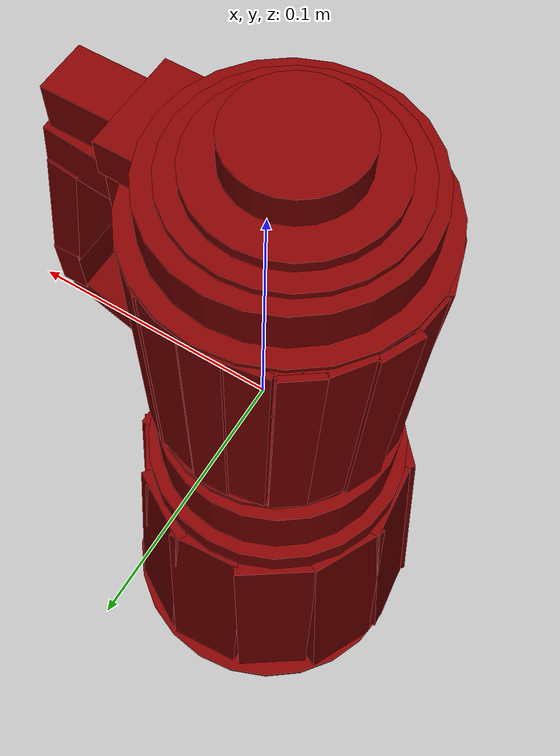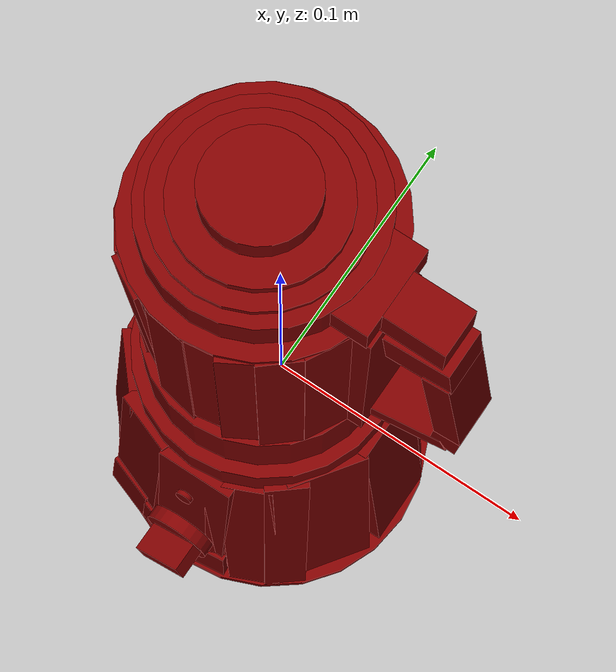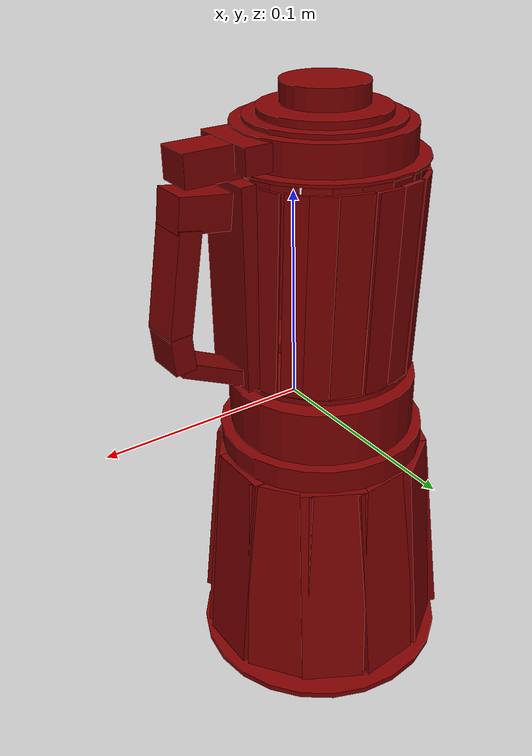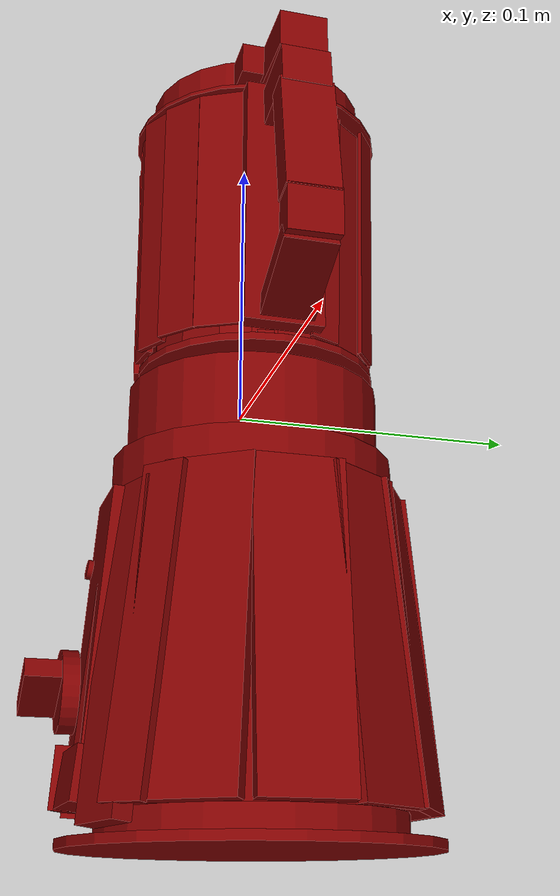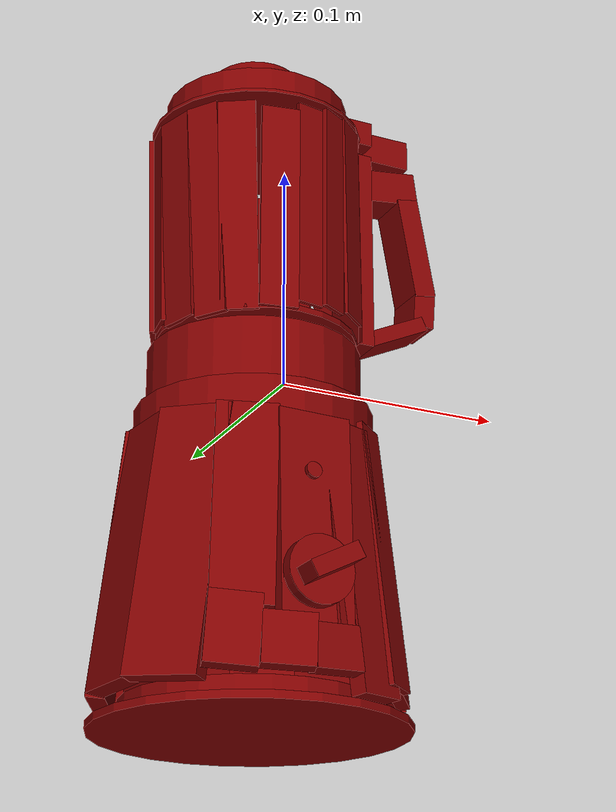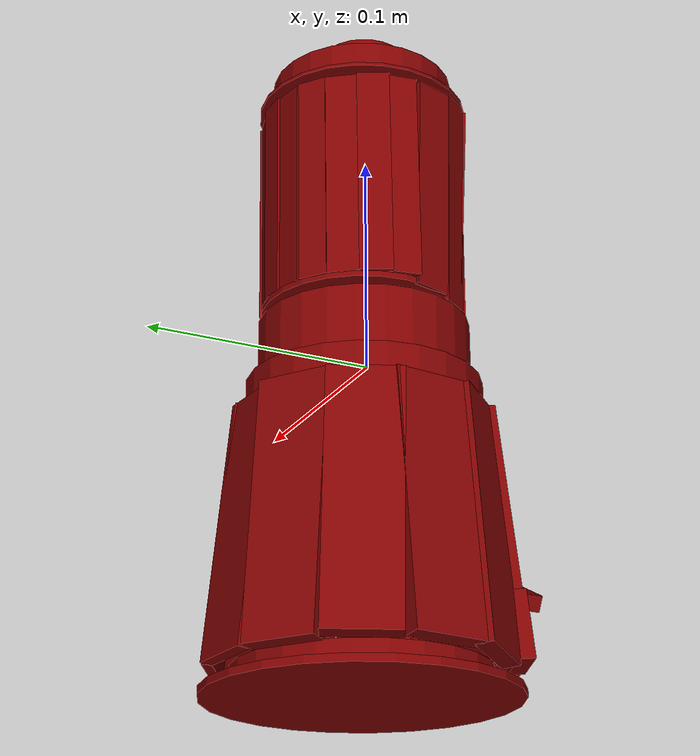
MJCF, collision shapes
<?xml version='1.0' encoding='UTF-8'?>
<mujoco model="model">
  <option timestep="0.002" gravity="0.0 0.0 -9.81"/>
  <compiler angle="radian"/>
  <asset>
    <mesh file="visuals/Blade001.obj" name="Blade001_vis"/>
    <mesh file="visuals/Body001.obj" name="Body001_vis"/>
    <mesh file="visuals/Button001.obj" name="Button001_vis"/>
    <mesh file="visuals/Jug001.obj" name="Jug001_vis"/>
    <mesh file="visuals/Jug001_Clear.obj" name="Jug001_Clear_vis"/>
    <mesh file="visuals/Knob001.obj" name="Knob001_vis"/>
    <mesh file="visuals/Lid001.obj" name="Lid001_vis"/>
    <texture file="visuals/T_BC001.png" name="Body001_material" type="2d"/>
    <material name="Body001_material" rgba="1 1 1 1.0" texture="Body001_material" shininess="0.7126775979995728" specular="0.3103448502657381"/>
    <texture file="visuals/T_BC001.png" name="Button001_material" type="2d"/>
    <material name="Button001_material" rgba="1 1 1 1.0" texture="Button001_material" shininess="0.7126775979995728" specular="0.3103448502657381"/>
    <texture file="visuals/T_BC001.png" name="Jug001_material" type="2d"/>
    <material name="Jug001_material" rgba="1 1 1 1.0" texture="Jug001_material" shininess="0.7126775979995728" specular="0.3103448502657381"/>
    <texture file="visuals/T_BC001.png" name="Blade001_material" type="2d"/>
    <material name="Blade001_material" rgba="1 1 1 1.0" texture="Blade001_material" shininess="0.7126775979995728" specular="0.3103448502657381"/>
    <texture file="visuals/T_BC001.png" name="Jug001_Clear_material" type="2d"/>
    <material name="Jug001_Clear_material" rgba="1 1 1 0.800000011920929" texture="Jug001_Clear_material" shininess="0.8092784583568573" specular="0.3103448502657381"/>
    <texture file="visuals/T_BC001.png" name="Lid001_material" type="2d"/>
    <material name="Lid001_material" rgba="1 1 1 1.0" texture="Lid001_material" shininess="0.7126775979995728" specular="0.3103448502657381"/>
    <texture file="visuals/T_BC001.png" name="Knob001_material" type="2d"/>
    <material name="Knob001_material" rgba="1 1 1 1.0" texture="Knob001_material" shininess="0.7126775979995728" specular="0.3103448502657381"/>
  </asset>
  <default>
    <default class="visual">
      <geom conaffinity="0" contype="0" group="1" type="mesh"/>
    </default>
    <default class="collision">
      <geom group="0" rgba="0.5 0 0 0.5"/>
    </default>
    <default class="spawn">
      <geom group="0" rgba="1 1 1 0.5" contype="0" conaffinity="0"/>
      <site group="0" rgba="1 1 1 0.5"/>
    </default>
    <default class="region">
      <geom group="1" conaffinity="0" contype="0" rgba="0 1 0 0"/>
    </default>
  </default>
  <worldbody>
    <body>
      <body name="object">
        <geom mesh="Body001_vis" type="mesh" solimp="0.998 0.998 0.001" solref="0.001 1" friction="0.95 0.3 0.1" class="visual" material="Body001_material"/>
        <geom class="collision" type="box" pos="-0.06414317 0.00293150 -0.08131555" size="0.003986308351159096 0.015745818614959717 0.054941773414611816" quat="0.9969801902770996 0.002991716144606471 0.05849111080169678 0.05099374055862427"/>
        <geom class="collision" type="box" pos="-0.05898194 0.03102392 -0.08121618" size="0.003986308351159096 0.015745816752314568 0.054941773414611816" quat="0.9726268649101257 0.021922767162322998 0.05430987477302551 -0.22487075626850128"/>
        <geom class="collision" type="box" pos="-0.03821645 0.05216332 -0.08130155" size="0.003986308351159096 0.01574581488966942 0.054941773414611816" quat="0.886173665523529 0.020056521520018578 0.0385282076895237 -0.4613128900527954"/>
        <geom class="collision" type="box" pos="-0.01100860 0.06139588 -0.08139399" size="0.002653482835739851 0.015745816752314568 0.054941773414611816" quat="0.7362769842147827 0.0351811945438385 0.038393545895814896 -0.6746735572814941"/>
        <geom class="collision" type="box" pos="0.01633125 0.05513551 -0.08116253" size="0.0021790468599647284 0.01574581488966942 0.054941777139902115" quat="0.49935898184776306 0.04383734613656998 0.025309504941105843 -0.8649151921272278"/>
        <geom class="collision" type="box" pos="0.03545922 0.03712036 -0.08134439" size="0.0018078562570735812 0.01574581488966942 0.054941773414611816" quat="0.30036523938179016 0.045378535985946655 0.014307779259979725 -0.9526367783546448"/>
        <geom class="collision" type="box" pos="0.04363298 0.01003369 -0.08086122" size="0.0026048512663692236 0.015745816752314568 0.054941773414611816" quat="7.540232616065623e-08 0.05030030384659767 3.797567593721851e-09 -0.9987341165542603"/>
        <geom class="collision" type="box" pos="0.03481350 -0.01944534 -0.08094111" size="0.0027222405187785625 0.015745816752314568 0.054941777139902115" quat="0.30034273862838745 -0.04684454947710037 0.01477002538740635 0.9525658488273621"/>
        <geom class="collision" type="box" pos="0.02587351 -0.03571680 -0.08130847" size="0.0014966638991609216 0.008354835212230682 0.05494178086519241" quat="0.4205015301704407 -0.04792412742972374 0.03366672620177269 0.9053995013237"/>
        <geom class="collision" type="box" pos="-0.05438795 -0.02428223 -0.08246415" size="0.003986308351159096 0.01574581488966942 0.054941773414611816" quat="0.9343163371086121 0.02062777802348137 0.05481475219130516 0.35160043835639954"/>
        <geom class="collision" type="box" pos="-0.03554909 -0.03983053 -0.07036536" size="0.003986308351159096 0.012453826144337654 0.04198986291885376" quat="0.8163965344429016 -0.016887996345758438 0.04775163158774376 0.5752662420272827"/>
        <geom class="collision" type="box" pos="0.00839477 -0.04297458 -0.08388708" size="0.002096703043207526 0.012412848882377148 0.04728870466351509" quat="0.560683012008667 -0.040940262377262115 0.030546532943844795 0.8264535069465637"/>
        <geom class="collision" type="box" pos="-0.04175205 -0.04451987 -0.12138034" size="0.0035907153505831957 0.010427257977426052 0.014271192252635956" quat="0.8109872341156006 0.0060891201719641685 0.05432721972465515 0.5825042128562927"/>
        <geom class="collision" type="box" pos="-0.02215584 -0.05125855 -0.12474555" size="0.003590715117752552 0.010427256114780903 0.010370254516601562" quat="0.8053919076919556 -0.005206680856645107 0.04405323788523674 0.5910804271697998"/>
        <geom class="collision" type="box" pos="-0.00340873 -0.05103144 -0.12598403" size="0.003590715816244483 0.010427255183458328 0.008998429402709007" quat="0.6632282137870789 -0.057456206530332565 0.01936173252761364 0.7459572553634644"/>
        <geom class="collision" type="box" pos="0.01315517 -0.04063753 -0.08596016" size="0.003590715117752552 0.010427254252135754 0.05563155561685562" quat="0.5456677079200745 -0.05234862118959427 0.011771116405725479 0.8362821340560913"/>
        <geom class="collision" type="cylinder" pos="-0.01079778 0.00852986 -0.13985953" size="0.05258236825466156 0.004347818437963724" quat="1.0 0.0 0.0 0.0"/>
        <geom class="collision" type="cylinder" pos="-0.01079778 0.00852986 -0.14579666" size="0.06486986577510834 0.0016201762482523918" quat="1.0 0.0 0.0 0.0"/>
        <geom class="collision" type="cylinder" pos="-0.01113476 0.00702684 -0.02817565" size="0.049913439899683 0.01324945967644453" quat="1.0 0.0 0.0 0.0"/>
        <geom class="collision" type="box" pos="-0.00909902 -0.04518037 -0.07987407" size="0.003590715117752552 0.015328536741435528 0.04948468133807182" quat="0.70053631067276 -0.018481511622667313 0.03286641836166382 0.7126199007034302"/>
        <body name="Button001">
          <joint axis="-0.0747469961643219 0.992827296257019 -0.09331010282039642" pos="-0.01069985 -0.04866998 -0.05617259" limited="true" name="Button001_joint" range="0.0 0.0015" type="slide" damping="1" frictionloss="1" armature=".01" stiffness="0.1" springref="-0.1"/>
          <geom mesh="Button001_vis" type="mesh" solimp="0.998 0.998 0.001" solref="0.001 1" friction="0.95 0.3 0.1" class="visual" material="Button001_material"/>
          <geom class="collision" type="cylinder" pos="-0.01073571 -0.04942436 -0.05600203" size="0.0033137896098196507 0.0009123445488512516" quat="0.7030347585678101 0.6229007840156555 -0.2200489640235901 0.26327773928642273"/>
        </body>
        <body name="Jug001">
          <joint axis="0.0 0.0 1.0" pos="-0.00974239 0.00680789 0.00393738" limited="true" name="Jug001_joint" range="0.0 0.05" type="slide" damping="1" frictionloss="1" armature=".01" stiffness="0.05"/>
          <geom mesh="Jug001_vis" type="mesh" solimp="0.998 0.998 0.001" solref="0.001 1" friction="0.95 0.3 0.1" class="visual" material="Jug001_material"/>
          <geom class="collision" type="cylinder" pos="-0.01116147 0.00577703 0.00309759" size="0.00906098261475563 0.008652156218886375" quat="1.0 0.0 0.0 0.0"/>
          <geom class="collision" type="box" pos="-0.05201297 -0.00544804 0.06401412" size="0.0011411537416279316 0.008665076456964016 0.04689289629459381" quat="0.9886313080787659 -0.0007852297276258469 -0.022206872701644897 0.14870889484882355"/>
          <geom class="collision" type="box" pos="-0.04462621 -0.01957276 0.06363554" size="0.0013928755652159452 0.007175058592110872 0.047899119555950165" quat="0.9493206143379211 -0.010618006810545921 -0.024758541956543922 0.31315281987190247"/>
          <geom class="collision" type="box" pos="-0.03491062 -0.02905723 0.06356143" size="0.0009027808555401862 0.007999305613338947 0.046975307166576385" quat="0.8626777529716492 0.00400641979649663 -0.025761157274246216 0.5050815939903259"/>
          <geom class="collision" type="box" pos="0.00641023 -0.03413283 0.06730504" size="0.0010227970778942108 0.00639775674790144 0.04582451283931732" quat="0.49985271692276 0.00337212230078876 -0.0017554215155541897 0.8661020994186401"/>
          <geom class="collision" type="box" pos="0.01845595 -0.02742273 0.06795305" size="0.0007466371753253043 0.007702946662902832 0.04582451656460762" quat="0.4149072468280792 -0.003698088228702545 0.0005286823725327849 0.9098560214042664"/>
          <geom class="collision" type="box" pos="0.03522604 0.00574075 0.06760135" size="0.0034557972103357315 0.014141874387860298 0.04613758996129036" quat="1.0 0.0 0.0 0.0"/>
          <geom class="collision" type="box" pos="0.01651037 0.04200349 0.06642398" size="0.0007405881187878549 0.005810028873383999 0.04582451283931732" quat="0.4493381381034851 0.004741608630865812 -0.01437248196452856 -0.8932335376739502"/>
          <geom class="collision" type="box" pos="0.00408397 0.04678640 0.06605563" size="0.0008923254208639264 0.007550706155598164 0.04582451283931732" quat="0.6081756353378296 0.001975441351532936 -0.015004957094788551 -0.7936581969261169"/>
          <geom class="collision" type="box" pos="-0.03599252 0.04240891 0.06529191" size="0.0009781541302800179 0.006452578119933605 0.04582451283931732" quat="0.8918564915657043 -0.004716404248028994 -0.014380785636603832 -0.45206522941589355"/>
          <geom class="collision" type="box" pos="-0.04469908 0.03284545 0.06531050" size="0.0011494028149172664 0.007025028578937054 0.04582451656460762" quat="0.9534119963645935 -0.006988314911723137 -0.013424396514892578 -0.30129143595695496"/>
          <geom class="collision" type="box" pos="0.06357763 0.00620615 0.07631346" size="0.005088288802653551 0.009546133689582348 0.023384999483823776" quat="0.9961947202682495 0.0 -0.08715573698282242 0.0"/>
          <geom class="collision" type="box" pos="0.05218959 0.00616715 0.10434674" size="0.007519893813878298 0.008824963122606277 0.01210277620702982" quat="0.7518044114112854 -0.00046680914238095284 0.6593855023384094 0.0008093591895885766"/>
          <geom class="collision" type="box" pos="0.05194099 0.00657414 0.03293036" size="0.0033454347867518663 0.009491372853517532 0.016489258036017418" quat="0.843391478061676 0.0 0.5372995734214783 0.0"/>
          <geom class="collision" type="cylinder" pos="-0.00994867 0.00754640 0.01852010" size="0.04288448393344879 0.0013050753623247147" quat="1.0 0.0 0.0 0.0"/>
          <geom class="collision" type="cylinder" pos="-0.01113476 0.00702684 -0.00106360" size="0.04508111625909805 0.01324945967644453" quat="1.0 0.0 0.0 0.0"/>
          <geom class="collision" type="box" pos="0.06706209 0.00668775 0.04700918" size="0.004980669356882572 0.009491369128227234 0.008270477876067162" quat="0.9994047284126282 0.007976317778229713 0.033564552664756775 -0.0002168510400224477"/>
          <geom class="collision" type="box" pos="-0.00497821 -0.03502184 0.06734587" size="0.001022796961478889 0.006397756282240152 0.04582451283931732" quat="0.6432011723518372 0.003626530757173896 -0.001140607870183885 0.7656878232955933"/>
          <geom class="collision" type="box" pos="-0.01869681 -0.03497289 0.06361109" size="0.0010227971943095326 0.008234738372266293 0.04582451283931732" quat="0.7698814272880554 0.0037721358239650726 -0.0004729771171696484 0.6381756067276001"/>
          <geom class="collision" type="box" pos="-0.05242275 0.02184720 0.06538087" size="0.0011494026985019445 0.007025028113275766 0.04582451656460762" quat="0.9765552878379822 -0.00816198717802763 -0.012744918465614319 -0.2147340178489685"/>
          <geom class="collision" type="box" pos="-0.05422102 0.00973624 0.06560187" size="0.0011494028149172664 0.007025029044598341 0.04582451656460762" quat="0.9976705312728882 -0.009973456151783466 -0.011383378878235817 -0.06651640683412552"/>
          <geom class="collision" type="box" pos="-0.02339473 0.04737251 0.06545511" size="0.0009781541302800179 0.006452578119933605 0.04582451283931732" quat="0.7688629031181335 -0.0013972119195386767 -0.015069808810949326 -0.6392345428466797"/>
          <geom class="collision" type="box" pos="-0.01078633 0.04971658 0.06567467" size="0.000978154013864696 0.006452578119933605 0.04582451283931732" quat="0.7119560837745667 -0.00011576183896977454 -0.015133999288082123 -0.702060878276825"/>
          <geom class="collision" type="box" pos="0.02234555 0.03313158 0.06549271" size="0.000740588060580194 0.005810028873383999 0.04582451283931732" quat="0.3184846043586731 0.006726743653416634 -0.01355736143887043 -0.9478071928024292"/>
          <geom class="collision" type="box" pos="0.03010196 0.02289193 0.06587805" size="0.0007405880023725331 0.005810028873383999 0.04582451283931732" quat="0.1984029859304428 0.008357168175280094 -0.012617817148566246 -0.9800036549568176"/>
          <geom class="collision" type="box" pos="0.02824378 -0.01489266 0.06796412" size="0.0007466371171176434 0.00865502841770649 0.04582451283931732" quat="0.23986472189426422 -0.0035369955003261566 0.0012020895956084132 0.9707991480827332"/>
          <body name="Blade001">
            <joint axis="0.0 0.0 1.0" pos="-0.01134515 0.00675489 0.02532513" limited="false" name="Blade001_joint" range="0 360" type="hinge" damping="1" frictionloss="1" armature=".01" stiffness="0.05"/>
            <geom mesh="Blade001_vis" type="mesh" solimp="0.998 0.998 0.001" solref="0.001 1" friction="0.95 0.3 0.1" class="visual" material="Blade001_material"/>
            <geom class="collision" type="box" pos="-0.01133486 0.00447850 0.02316258" size="0.0030732648447155952 0.020795876160264015 0.0011587267508730292" quat="1.0 0.0 0.0 0.0"/>
            <geom class="collision" type="box" pos="-0.02736820 0.00661103 0.02573356" size="0.0030642191413789988 0.010015010833740234 0.0011587272165343165" quat="0.6698104739189148 -0.09623399376869202 0.08818221837282181 -0.7309697866439819"/>
            <geom class="collision" type="box" pos="0.00365382 0.00661103 0.02564197" size="0.0030642191413789988 0.010015010833740234 0.0011587273329496384" quat="0.6653264760971069 0.12802685797214508 -0.11731503903865814 -0.7260764241218567"/>
          </body>
          <body name="Jug001_Clear">
            <geom class="region" name="reg_int" type="box" pos="-0.009254010000000002 0.00609284 0.071523825" size="0.024752170000000004 0.024752170000000004 0.04180228500000001"/>
            <geom mesh="Jug001_Clear_vis" type="mesh" solimp="0.998 0.998 0.001" solref="0.001 1" friction="0.95 0.3 0.1" class="visual" material="Jug001_Clear_material"/>
            <geom class="collision" type="box" pos="-0.05201297 -0.00544804 0.06401412" size="0.0011411537416279316 0.008665076456964016 0.04689289629459381" quat="0.9886313080787659 -0.0007852297276258469 -0.022206872701644897 0.14870889484882355"/>
            <geom class="collision" type="box" pos="-0.04462621 -0.01957276 0.06363554" size="0.0013928755652159452 0.007175058592110872 0.047899119555950165" quat="0.9493206143379211 -0.010618006810545921 -0.024758541956543922 0.31315281987190247"/>
            <geom class="collision" type="box" pos="-0.03491062 -0.02905723 0.06356143" size="0.0009027808555401862 0.007999305613338947 0.046975307166576385" quat="0.8626777529716492 0.00400641979649663 -0.025761157274246216 0.5050815939903259"/>
            <geom class="collision" type="box" pos="0.00641023 -0.03413283 0.06730504" size="0.0010227970778942108 0.00639775674790144 0.04582451283931732" quat="0.49985271692276 0.00337212230078876 -0.0017554215155541897 0.8661020994186401"/>
            <geom class="collision" type="box" pos="0.01845595 -0.02742273 0.06795305" size="0.0007466371753253043 0.007702946662902832 0.04582451656460762" quat="0.4149072468280792 -0.003698088228702545 0.0005286823725327849 0.9098560214042664"/>
            <geom class="collision" type="box" pos="0.03522604 0.00574075 0.06760135" size="0.0034557972103357315 0.014141874387860298 0.04613758996129036" quat="1.0 0.0 0.0 0.0"/>
            <geom class="collision" type="box" pos="0.01651037 0.04200349 0.06642398" size="0.0007405881187878549 0.005810028873383999 0.04582451283931732" quat="0.4493381381034851 0.004741608630865812 -0.01437248196452856 -0.8932335376739502"/>
            <geom class="collision" type="box" pos="0.00408397 0.04678640 0.06605563" size="0.0008923254208639264 0.007550706155598164 0.04582451283931732" quat="0.6081756353378296 0.001975441351532936 -0.015004957094788551 -0.7936581969261169"/>
            <geom class="collision" type="box" pos="-0.03599252 0.04240891 0.06529191" size="0.0009781541302800179 0.006452578119933605 0.04582451283931732" quat="0.8918564915657043 -0.004716404248028994 -0.014380785636603832 -0.45206522941589355"/>
            <geom class="collision" type="box" pos="-0.04469908 0.03284545 0.06531050" size="0.0011494028149172664 0.007025028578937054 0.04582451656460762" quat="0.9534119963645935 -0.006988314911723137 -0.013424396514892578 -0.30129143595695496"/>
            <geom class="collision" type="box" pos="0.06357763 0.00620615 0.07631346" size="0.005088288802653551 0.009546133689582348 0.023384999483823776" quat="0.9961947202682495 0.0 -0.08715573698282242 0.0"/>
            <geom class="collision" type="box" pos="0.05218959 0.00616715 0.10434674" size="0.007519893813878298 0.008824963122606277 0.01210277620702982" quat="0.7518044114112854 -0.00046680914238095284 0.6593855023384094 0.0008093591895885766"/>
            <geom class="collision" type="box" pos="0.05194099 0.00657414 0.03293036" size="0.0033454347867518663 0.009491372853517532 0.016489258036017418" quat="0.843391478061676 0.0 0.5372995734214783 0.0"/>
            <geom class="collision" type="cylinder" pos="-0.00994867 0.00754640 0.01852010" size="0.04288448393344879 0.0013050753623247147" quat="1.0 0.0 0.0 0.0"/>
            <geom class="collision" type="box" pos="0.06706209 0.00668775 0.04700918" size="0.004980669356882572 0.009491369128227234 0.008270477876067162" quat="0.9994047284126282 0.007976317778229713 0.033564552664756775 -0.0002168510400224477"/>
            <geom class="collision" type="box" pos="-0.00497821 -0.03502184 0.06734587" size="0.001022796961478889 0.006397756282240152 0.04582451283931732" quat="0.6432011723518372 0.003626530757173896 -0.001140607870183885 0.7656878232955933"/>
            <geom class="collision" type="box" pos="-0.01869681 -0.03497289 0.06361109" size="0.0010227971943095326 0.008234738372266293 0.04582451283931732" quat="0.7698814272880554 0.0037721358239650726 -0.0004729771171696484 0.6381756067276001"/>
            <geom class="collision" type="box" pos="-0.05242275 0.02184720 0.06538087" size="0.0011494026985019445 0.007025028113275766 0.04582451656460762" quat="0.9765552878379822 -0.00816198717802763 -0.012744918465614319 -0.2147340178489685"/>
            <geom class="collision" type="box" pos="-0.05422102 0.00973624 0.06560187" size="0.0011494028149172664 0.007025029044598341 0.04582451656460762" quat="0.9976705312728882 -0.009973456151783466 -0.011383378878235817 -0.06651640683412552"/>
            <geom class="collision" type="box" pos="-0.02339473 0.04737251 0.06545511" size="0.0009781541302800179 0.006452578119933605 0.04582451283931732" quat="0.7688629031181335 -0.0013972119195386767 -0.015069808810949326 -0.6392345428466797"/>
            <geom class="collision" type="box" pos="-0.01078633 0.04971658 0.06567467" size="0.000978154013864696 0.006452578119933605 0.04582451283931732" quat="0.7119560837745667 -0.00011576183896977454 -0.015133999288082123 -0.702060878276825"/>
            <geom class="collision" type="box" pos="0.02234555 0.03313158 0.06549271" size="0.000740588060580194 0.005810028873383999 0.04582451283931732" quat="0.3184846043586731 0.006726743653416634 -0.01355736143887043 -0.9478071928024292"/>
            <geom class="collision" type="box" pos="0.03010196 0.02289193 0.06587805" size="0.0007405880023725331 0.005810028873383999 0.04582451283931732" quat="0.1984029859304428 0.008357168175280094 -0.012617817148566246 -0.9800036549568176"/>
            <geom class="collision" type="box" pos="0.02824378 -0.01489266 0.06796412" size="0.0007466371171176434 0.00865502841770649 0.04582451283931732" quat="0.23986472189426422 -0.0035369955003261566 0.0012020895956084132 0.9707991480827332"/>
          </body>
          <body name="Lid001">
            <joint axis="0.0 0.0 1.0" pos="0.00045405 0.00654089 0.12743237" limited="true" name="Lid001_joint" range="0.0 0.05" type="slide" damping="1" frictionloss="1" armature=".01" stiffness="0.05"/>
            <geom mesh="Lid001_vis" type="mesh" solimp="0.998 0.998 0.001" solref="0.001 1" friction="0.95 0.3 0.1" class="visual" material="Lid001_material"/>
            <geom class="collision" type="cylinder" pos="-0.01079778 0.00694866 0.12359779" size="0.03988746181130409 0.006859514396637678" quat="1.0 0.0 0.0 0.0"/>
            <geom class="collision" type="cylinder" pos="-0.01079778 0.00694866 0.11612047" size="0.045904722064733505 0.0007029778207652271" quat="1.0 0.0 0.0 0.0"/>
            <geom class="collision" type="cylinder" pos="-0.01151277 0.00641243 0.14129747" size="0.019289351999759674 0.004582580644637346" quat="1.0 0.0 0.0 0.0"/>
            <geom class="collision" type="box" pos="0.04515278 0.00620714 0.12229430" size="0.015266613103449345 0.008549760095775127 0.006911179516464472" quat="1.0 0.0 0.0 0.0"/>
            <geom class="collision" type="box" pos="0.03150759 0.00620714 0.12383163" size="0.006593892816454172 0.016444940119981766 0.0057326871901750565" quat="1.0 0.0 0.0 0.0"/>
            <geom class="collision" type="cylinder" pos="-0.01151277 0.00641243 0.13389243" size="0.028988415375351906 0.0018546077189967036" quat="1.0 0.0 0.0 0.0"/>
            <geom class="collision" type="cylinder" pos="-0.01151277 0.00641243 0.13025213" size="0.035023611038923264 0.002240724628791213" quat="1.0 0.0 0.0 0.0"/>
          </body>
        </body>
        <body name="Knob001">
          <joint axis="0.0 1.0 0.0" pos="-0.01099387 -0.05696104 -0.09707736" limited="true" name="Knob001_joint" range="0.0 4.1887902047863905" type="hinge" damping="0.05" frictionloss="0.1" armature="0.001"/>
          <geom mesh="Knob001_vis" type="mesh" solimp="0.998 0.998 0.001" solref="0.001 1" friction="0.95 0.3 0.1" class="visual" material="Knob001_material"/>
          <geom class="collision" type="cylinder" pos="-0.01121220 -0.05481474 -0.09766724" size="0.01372851338237524 0.0028194477781653404" quat="0.7071067094802856 0.7071068286895752 0.0 0.0" density="0.001"/>
          <geom class="collision" type="box" pos="-0.01058615 -0.06368847 -0.09685497" size="0.003505827160552144 0.00607439037412405 0.011031357571482658" quat="0.5197781324386597 -3.226090683483562e-08 -0.8543012738227844 -5.751893183969514e-08" density="0.001"/>
        </body>
        <geom class="region" name="reg_main" type="box" pos="-0.010925574999999996 0.006807835000000002 0.0" size="0.064281375 0.064282685 0.14836363"/>
      </body>
    </body>
  </worldbody>
  <actuator>
    <motor name="Button001_joint_actuator" joint="Button001_joint" gear="0.1"/>
    <motor name="Jug001_joint_actuator" joint="Jug001_joint" gear="10"/>
    <motor name="Knob001_joint_actuator" joint="Knob001_joint" gear="10"/>
    <motor name="Blade001_joint_actuator" joint="Blade001_joint" gear="10"/>
    <motor name="Lid001_joint_actuator" joint="Lid001_joint" gear="10"/>
  </actuator>
</mujoco>
